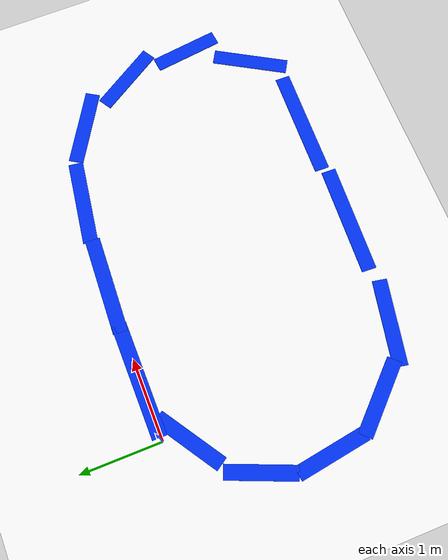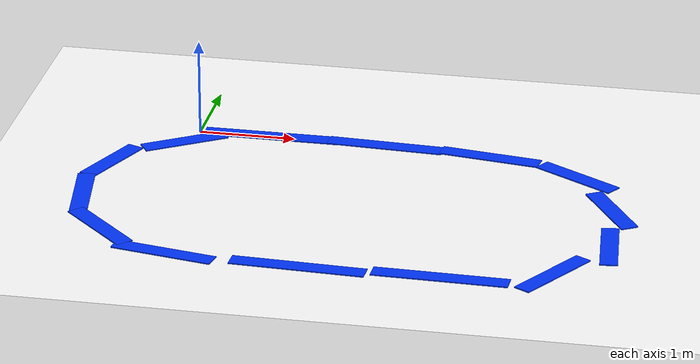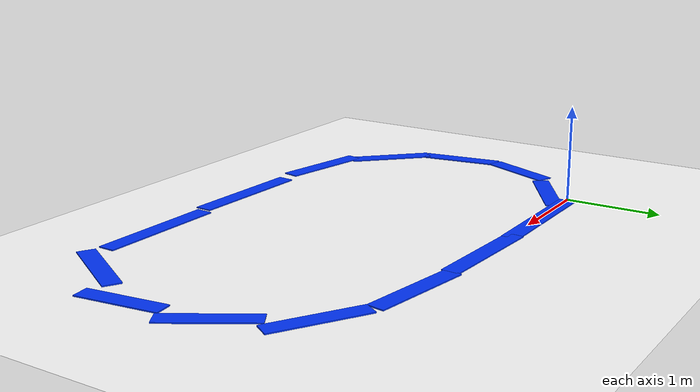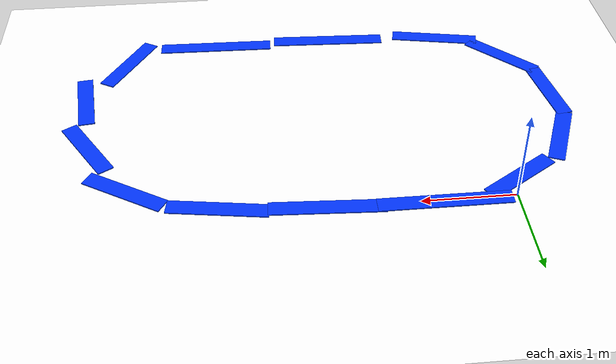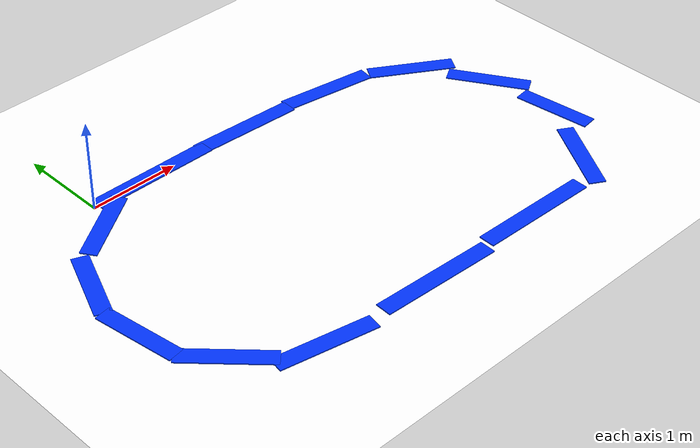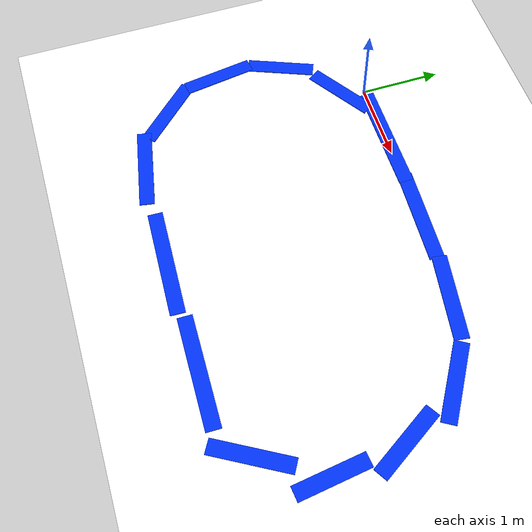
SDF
<sdf version="1.10">
 <world name="tugbot_lane_world">
  <physics name="1ms" type="ignored">
   <max_step_size>0.001</max_step_size>
   <real_time_factor>1.0</real_time_factor>
   <real_time_update_rate>1000</real_time_update_rate>
  </physics>
  <plugin name="gz::sim::systems::Physics" filename="gz-sim-physics-system"/>
  <plugin name="gz::sim::systems::UserCommands" filename="gz-sim-user-commands-system"/>
  <plugin name="gz::sim::systems::SceneBroadcaster" filename="gz-sim-scene-broadcaster-system"/>
  <gravity>0 0 -9.8</gravity>
  <scene>
   <ambient>0.4 0.4 0.4 1</ambient>
   <background>0.75 0.75 0.75 1</background>
   <shadows>true</shadows>
  </scene>
  <model name="ground_plane">
   <static>true</static>
   <link name="link">
    <collision name="collision">
     <geometry><plane><normal>0 0 1</normal><size>40 40</size></plane></geometry>
    </collision>
    <visual name="visual">
     <geometry><plane><normal>0 0 1</normal><size>40 40</size></plane></geometry>
     <material>
      <ambient>1 1 1 1</ambient>
      <diffuse>1 1 1 1</diffuse>
      <specular>0.05 0.05 0.05 1</specular>
      <pbr><metal><albedo_map>zeroerr.png</albedo_map></metal></pbr>
     </material>
    </visual>
   </link>
  </model>
  <model name="visual_track_01">
   <static>true</static>
   <pose>0.75 0.02 0.006 0 0 0.00</pose>
   <link name="link">
    <visual name="visual">
     <cast_shadows>false</cast_shadows>
     <geometry><box><size>1.40 0.18 0.012</size></box></geometry>
     <material>
      <ambient>0.0 0.2 0.98 1</ambient>
      <diffuse>0.0 0.2 0.98 1</diffuse>
      <specular>0.1 0.1 0.1 1</specular>
     </material>
    </visual>
   </link>
  </model>
  <model name="visual_track_02">
   <static>true</static>
   <pose>1.95 0.00 0.006 0 0 -0.05</pose>
   <link name="link">
    <visual name="visual">
     <cast_shadows>false</cast_shadows>
     <geometry><box><size>1.20 0.18 0.012</size></box></geometry>
     <material>
      <ambient>0.0 0.2 0.98 1</ambient>
      <diffuse>0.0 0.2 0.98 1</diffuse>
      <specular>0.1 0.1 0.1 1</specular>
     </material>
    </visual>
   </link>
  </model>
  <model name="visual_track_03">
   <static>true</static>
   <pose>3.05 -0.08 0.006 0 0 -0.15</pose>
   <link name="link">
    <visual name="visual">
     <cast_shadows>false</cast_shadows>
     <geometry><box><size>1.05 0.18 0.012</size></box></geometry>
     <material>
      <ambient>0.0 0.2 0.98 1</ambient>
      <diffuse>0.0 0.2 0.98 1</diffuse>
      <specular>0.1 0.1 0.1 1</specular>
     </material>
    </visual>
   </link>
  </model>
  <model name="visual_track_04">
   <static>true</static>
   <pose>4.00 -0.42 0.006 0 0 -0.55</pose>
   <link name="link">
    <visual name="visual">
     <cast_shadows>false</cast_shadows>
     <geometry><box><size>0.95 0.18 0.012</size></box></geometry>
     <material>
      <ambient>0.0 0.2 0.98 1</ambient>
      <diffuse>0.0 0.2 0.98 1</diffuse>
      <specular>0.1 0.1 0.1 1</specular>
     </material>
    </visual>
   </link>
  </model>
  <model name="visual_track_05">
   <static>true</static>
   <pose>4.45 -1.15 0.006 0 0 -1.02</pose>
   <link name="link">
    <visual name="visual">
     <cast_shadows>false</cast_shadows>
     <geometry><box><size>0.90 0.18 0.012</size></box></geometry>
     <material>
      <ambient>0.0 0.2 0.98 1</ambient>
      <diffuse>0.0 0.2 0.98 1</diffuse>
      <specular>0.1 0.1 0.1 1</specular>
     </material>
    </visual>
   </link>
  </model>
  <model name="visual_track_06">
   <static>true</static>
   <pose>4.55 -2.00 0.006 0 0 -1.45</pose>
   <link name="link">
    <visual name="visual">
     <cast_shadows>false</cast_shadows>
     <geometry><box><size>0.85 0.18 0.012</size></box></geometry>
     <material>
      <ambient>0.0 0.2 0.98 1</ambient>
      <diffuse>0.0 0.2 0.98 1</diffuse>
      <specular>0.1 0.1 0.1 1</specular>
     </material>
    </visual>
   </link>
  </model>
  <model name="visual_track_07">
   <static>true</static>
   <pose>4.10 -2.72 0.006 0 0 -2.10</pose>
   <link name="link">
    <visual name="visual">
     <cast_shadows>false</cast_shadows>
     <geometry><box><size>0.95 0.18 0.012</size></box></geometry>
     <material>
      <ambient>0.0 0.2 0.98 1</ambient>
      <diffuse>0.0 0.2 0.98 1</diffuse>
      <specular>0.1 0.1 0.1 1</specular>
     </material>
    </visual>
   </link>
  </model>
  <model name="visual_track_08">
   <static>true</static>
   <pose>3.05 -3.00 0.006 0 0 3.12</pose>
   <link name="link">
    <visual name="visual">
     <cast_shadows>false</cast_shadows>
     <geometry><box><size>1.35 0.18 0.012</size></box></geometry>
     <material>
      <ambient>0.0 0.2 0.98 1</ambient>
      <diffuse>0.0 0.2 0.98 1</diffuse>
      <specular>0.1 0.1 0.1 1</specular>
     </material>
    </visual>
   </link>
  </model>
  <model name="visual_track_09">
   <static>true</static>
   <pose>1.65 -3.02 0.006 0 0 3.10</pose>
   <link name="link">
    <visual name="visual">
     <cast_shadows>false</cast_shadows>
     <geometry><box><size>1.35 0.18 0.012</size></box></geometry>
     <material>
      <ambient>0.0 0.2 0.98 1</ambient>
      <diffuse>0.0 0.2 0.98 1</diffuse>
      <specular>0.1 0.1 0.1 1</specular>
     </material>
    </visual>
   </link>
  </model>
  <model name="visual_track_10">
   <static>true</static>
   <pose>0.30 -2.95 0.006 0 0 2.95</pose>
   <link name="link">
    <visual name="visual">
     <cast_shadows>false</cast_shadows>
     <geometry><box><size>1.05 0.18 0.012</size></box></geometry>
     <material>
      <ambient>0.0 0.2 0.98 1</ambient>
      <diffuse>0.0 0.2 0.98 1</diffuse>
      <specular>0.1 0.1 0.1 1</specular>
     </material>
    </visual>
   </link>
  </model>
  <model name="visual_track_11">
   <static>true</static>
   <pose>-0.45 -2.48 0.006 0 0 2.35</pose>
   <link name="link">
    <visual name="visual">
     <cast_shadows>false</cast_shadows>
     <geometry><box><size>0.95 0.18 0.012</size></box></geometry>
     <material>
      <ambient>0.0 0.2 0.98 1</ambient>
      <diffuse>0.0 0.2 0.98 1</diffuse>
      <specular>0.1 0.1 0.1 1</specular>
     </material>
    </visual>
   </link>
  </model>
  <model name="visual_track_12">
   <static>true</static>
   <pose>-0.82 -1.72 0.006 0 0 1.72</pose>
   <link name="link">
    <visual name="visual">
     <cast_shadows>false</cast_shadows>
     <geometry><box><size>0.90 0.18 0.012</size></box></geometry>
     <material>
      <ambient>0.0 0.2 0.98 1</ambient>
      <diffuse>0.0 0.2 0.98 1</diffuse>
      <specular>0.1 0.1 0.1 1</specular>
     </material>
    </visual>
   </link>
  </model>
  <model name="visual_track_13">
   <static>true</static>
   <pose>-0.72 -0.90 0.006 0 0 1.18</pose>
   <link name="link">
    <visual name="visual">
     <cast_shadows>false</cast_shadows>
     <geometry><box><size>0.85 0.18 0.012</size></box></geometry>
     <material>
      <ambient>0.0 0.2 0.98 1</ambient>
      <diffuse>0.0 0.2 0.98 1</diffuse>
      <specular>0.1 0.1 0.1 1</specular>
     </material>
    </visual>
   </link>
  </model>
  <model name="visual_track_14">
   <static>true</static>
   <pose>-0.10 -0.28 0.006 0 0 0.58</pose>
   <link name="link">
    <visual name="visual">
     <cast_shadows>false</cast_shadows>
     <geometry><box><size>0.90 0.18 0.012</size></box></geometry>
     <material>
      <ambient>0.0 0.2 0.98 1</ambient>
      <diffuse>0.0 0.2 0.98 1</diffuse>
      <specular>0.1 0.1 0.1 1</specular>
     </material>
    </visual>
   </link>
  </model>
 </world>
</sdf>
